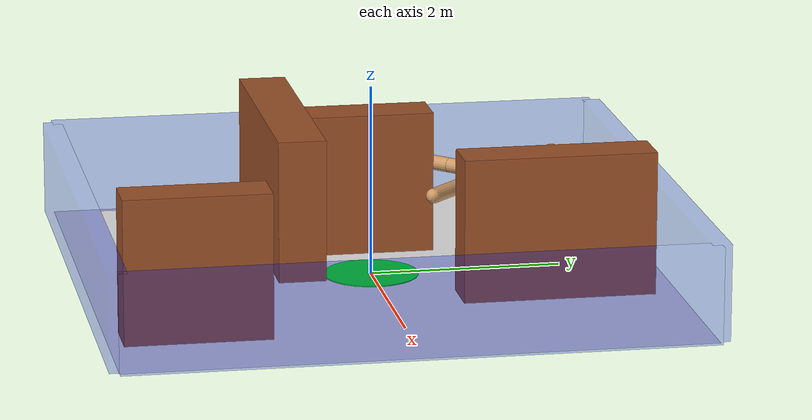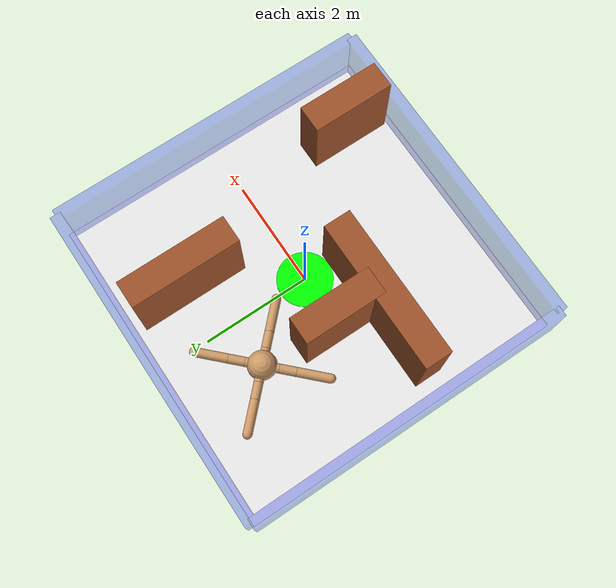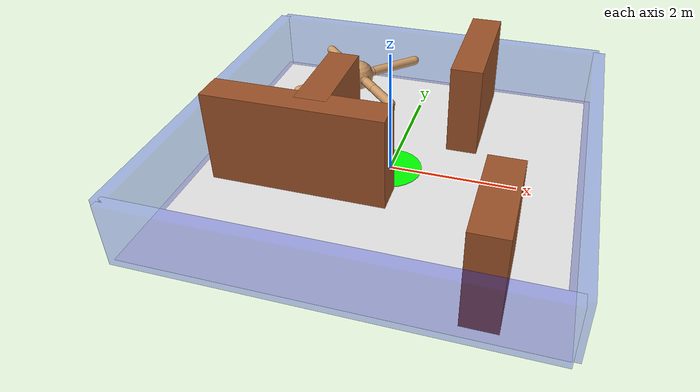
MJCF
<mujoco model="ant">
	<compiler inertiafromgeom="true" angle="degree" coordinate="local" />
	<custom>
    		<numeric name="init_qpos" data="0.0 0.0 0.55 1.0 0.0 0.0 0.0 0.0 1.0 0.0 -1.0 0.0 -1.0 0.0 1.0" />
	</custom>
	<option integrator="RK4" timestep="0.0025"/>
	<default>
		<joint armature="1" damping="1" limited="true"/>
		<!--geom conaffinity="0" condim="3" density="5.0" friction="1 0.5 0.5" margin="0.01"/-->
		<geom conaffinity="1" contype="1" condim="3" density="5.0" friction="1 0.5 0.5" margin="0.01"  rgba="0.8 0.6 .4 1" />
 	</default>

	<asset>
		<texture name="texgeom" type="cube" builtin="flat" mark="cross" width="127" height="1278" rgb1="0.8 0.6 0.4" rgb2="0.8 0.6 0.4" markrgb="1 1 1" random="0.01" />
		<material name='geom' texture="texgeom" texuniform="true" />
	</asset>

	<worldbody>
		<light diffuse=".2 .2 .2" dir="0 0 -1" pos="0 0 2.5" />
		<!--light cutoff="100" diffuse="1 1 1" dir="-0 0 -1.3" directional="true" exponent="1" pos="0 0 1.3" specular=".1 .1 .1"/-->
		<geom conaffinity="1" condim="3" pos="0 0 0" size="3 3 3" rgba="0.9 0.9 0.9 1" type="plane" />

		<!--body name="torso" pos="-1.5 -2 .75"-->
		<!--body name="torso" pos="1 -.4 .75"-->
		<body name="torso" pos="-1 1.5 .75">
		<!--body name="torso" pos="-2 0.5 .75"-->
      			<geom name="torso_geom" pos="0 0 0" size="0.25 0.25 0.25" type="ellipsoid"/>
			<!--geom name="head" density="0.01" rgba="1.0 0.5 0.3 1" pos="0.4 0 0.25" size="0.25" type="sphere"/-->
      			<joint armature="0" damping="0" limited="false" margin="0.01" name="root" pos="0 0 0" type="free"/>
      			<body name="front_left_leg" pos="0 0 0">
        			<geom fromto="0.0 0.0 0.0 0.2 0.2 0.0" name="aux_1_geom" size="0.08" type="capsule"/>
        			<body name="aux_1" pos="0.2 0.2 0">
          				<joint axis="0 0 1" name="hip_1" pos="0.0 0.0 0.0" range="-30 30" type="hinge"/>
          				<geom fromto="0.0 0.0 0.0 0.2 0.2 0.0" name="left_leg_geom" size="0.08" type="capsule"/>
          				<body pos="0.2 0.2 0">
            					<joint axis="-1 1 0" name="ankle_1" pos="0.0 0.0 0.0" range="30 70" type="hinge"/>
            					<geom fromto="0.0 0.0 0.0 0.4 0.4 0.0" name="left_ankle_geom" size="0.08" type="capsule"/>
          				</body>
        			</body>
      			</body>
      			<body name="front_right_leg" pos="0 0 0">
        			<geom fromto="0.0 0.0 0.0 -0.2 0.2 0.0" name="aux_2_geom" size="0.08" type="capsule"/>
        			<body name="aux_2" pos="-0.2 0.2 0">
          				<joint axis="0 0 1" name="hip_2" pos="0.0 0.0 0.0" range="-30 30" type="hinge"/>
          				<geom fromto="0.0 0.0 0.0 -0.2 0.2 0.0" name="right_leg_geom" size="0.08" type="capsule"/>
          				<body pos="-0.2 0.2 0">
            					<joint axis="1 1 0" name="ankle_2" pos="0.0 0.0 0.0" range="-70 -30" type="hinge"/>
            					<geom fromto="0.0 0.0 0.0 -0.4 0.4 0.0" name="right_ankle_geom" size="0.08" type="capsule"/>
          				</body>
        			</body>
      			</body>
      			<body name="back_leg" pos="0 0 0">
        			<geom fromto="0.0 0.0 0.0 -0.2 -0.2 0.0" name="aux_3_geom" size="0.08" type="capsule"/>
        			<body name="aux_3" pos="-0.2 -0.2 0">
          				<joint axis="0 0 1" name="hip_3" pos="0.0 0.0 0.0" range="-30 30" type="hinge"/>
          				<geom fromto="0.0 0.0 0.0 -0.2 -0.2 0.0" name="back_leg_geom" size="0.08" type="capsule"/>
          				<body pos="-0.2 -0.2 0">
            					<joint axis="-1 1 0" name="ankle_3" pos="0.0 0.0 0.0" range="-70 -30" type="hinge"/>
            					<geom fromto="0.0 0.0 0.0 -0.4 -0.4 0.0" name="third_ankle_geom" size="0.08" type="capsule"/>
          				</body>
        			</body>
      			</body>
      			<body name="right_back_leg" pos="0 0 0">
        			<geom fromto="0.0 0.0 0.0 0.2 -0.2 0.0" name="aux_4_geom" size="0.08" type="capsule"/>
        			<body name="aux_4" pos="0.2 -0.2 0">
          				<joint axis="0 0 1" name="hip_4" pos="0.0 0.0 0.0" range="-30 30" type="hinge"/>
          				<geom fromto="0.0 0.0 0.0 0.2 -0.2 0.0" name="rightback_leg_geom" size="0.08" type="capsule"/>
          				<body pos="0.2 -0.2 0">
            					<joint axis="1 1 0" name="ankle_4" pos="0.0 0.0 0.0" range="30 70" type="hinge"/>
            					<geom fromto="0.0 0.0 0.0 0.4 -0.4 0.0" name="fourth_ankle_geom" size="0.08" type="capsule"/>
          				</body>
        			</body>
      			</body>
    		</body>

		<geom pos="0 3 .5" conaffinity="1" rgba="0. .1 .9 .3" size="3 0.1 .5" type="box"/>
    		<geom pos="0 -3 .5" conaffinity="1" rgba="0. .1 .9 .3" size="3 0.1 .5" type="box"/>
    		<geom pos="3 0 .5" conaffinity="1" rgba="0 .1 .9 .3" size="0.1 3 .5" type="box"/>
		<geom pos="-3 0 .5" conaffinity="1" rgba="0 .1 .9 .3" size="0.1 3 .5" type="box"/>

		<body name="goal" pos = "0 0 0">
		<!--body name="goal" pos = "-2.25 0.25 0"-->
			<geom conaffinity="0" contype="0" density="0.00001" rgba="0 1 0 1" size="0.5 0.005 0.2" type="cylinder"/>
			<joint axis="1 0 0" damping="0.5" name="goal_slidex" pos="0 0 0" range="-10.3213 10.3" type="slide" />
            		<joint axis="0 1 0" damping="0.5" name="goal_slidey" pos="0 0 0" range="-10.3213 10.3" type="slide" />
		</body>

		<body name="obstacle_1" pos="-1.2 -0.75 .75">
			<geom conaffinity="1" contype="1" name="distractor_1" pos="0 0 0" rgba="0.61 0.32 0.16 1" size="1.4 .25 .75" type="box"/>
		</body>

		<body name="obstacle_2" pos="1. 1.75 .75">
			<geom conaffinity="1" contype="1" name="distractor_2" pos="0 0 0" rgba="0.61 0.32 0.16 1" size="0.25 1. .75" type="box"/>
		</body>

		<body name="obstacle_3" pos="-1. 0.05 .75">
			<geom conaffinity="1" contype="1" name="distractor_3" pos="0 0 0" rgba="0.61 0.32 0.16 1" size="0.25 0.75 .75" type="box"/>
		</body>

		<body name="obstacle_4" pos="1.9 -2.1 .75">
			<geom conaffinity="1" contype="1" name="distractor_4" pos="0 0 0" rgba="0.61 0.32 0.16 1" size="0.25 0.75 .75" type="box"/>
		</body>

	</worldbody>

  	<actuator>
    		<motor ctrllimited="true" ctrlrange="-1.0 1.0" joint="hip_4" gear="150"/>
    		<motor ctrllimited="true" ctrlrange="-1.0 1.0" joint="ankle_4" gear="150"/>
    		<motor ctrllimited="true" ctrlrange="-1.0 1.0" joint="hip_1" gear="150"/>
    		<motor ctrllimited="true" ctrlrange="-1.0 1.0" joint="ankle_1" gear="150"/>
    		<motor ctrllimited="true" ctrlrange="-1.0 1.0" joint="hip_2" gear="150"/>
    		<motor ctrllimited="true" ctrlrange="-1.0 1.0" joint="ankle_2" gear="150"/>
    		<motor ctrllimited="true" ctrlrange="-1.0 1.0" joint="hip_3" gear="150"/>
    		<motor ctrllimited="true" ctrlrange="-1.0 1.0" joint="ankle_3" gear="150"/>
  	</actuator>
  	<sensor>
    		<jointpos name='pos_hip_1' joint='hip_1' />
    		<jointpos name='pos_hip_2' joint='hip_2' />
    		<jointpos name='pos_hip_3' joint='hip_3' />
    		<jointpos name='pos_hip_4' joint='hip_4' />
    		<jointpos name='pos_ankle_1' joint='ankle_1' />
    		<jointpos name='pos_ankle_2' joint='ankle_2' />
    		<jointpos name='pos_ankle_3' joint='ankle_3' />
		<jointpos name='pos_ankle_4' joint='ankle_4' />
		<jointpos name='goalpos_slidex' joint='goal_slidex' />
		<jointpos name='goalpos_slidey' joint='goal_slidey' />

    		<jointvel name='vel_hip_1'   joint='hip_1' />
    		<jointvel name='vel_hip_2'   joint='hip_2' />
    		<jointvel name='vel_hip_3'   joint='hip_3' />
    		<jointvel name='vel_hip_4'   joint='hip_4' />
    		<jointvel name='vel_ankle_1' joint='ankle_1' />
   		<jointvel name='vel_ankle_2' joint='ankle_2' />
    		<jointvel name='vel_ankle_3' joint='ankle_3' />
    		<jointvel name='vel_ankle_4' joint='ankle_4' />
		<jointvel name='goalvel_slidex' joint='goal_slidex' />
		<jointvel name='goalvel_slidey' joint='goal_slidey' />
  	</sensor>

</mujoco>
